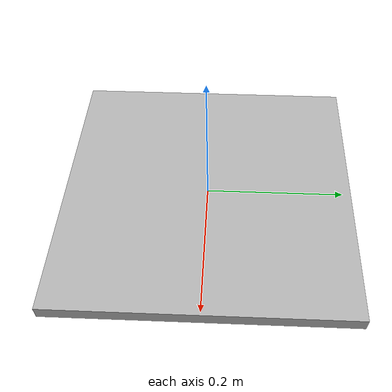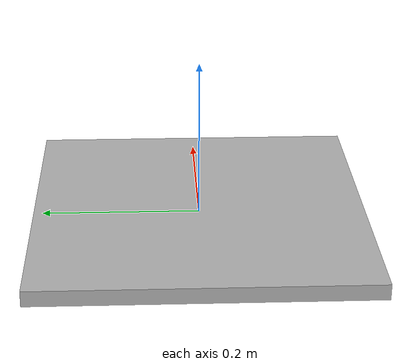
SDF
<?xml version="1.0" ?>
<sdf version="1.4">
  <model name="go_board">
    <static>0</static>
    <link name="link">

      <inertial>
        <mass>0.05</mass>
        <inertia>
          <ixx>0.0015</ixx>
          <ixy>0.1</ixy>
          <ixz>0.1</ixz>
          <iyy>0.0015</iyy>
          <iyz>0.1</iyz>
          <izz>0.00108</izz>
        </inertia>
      </inertial>

      <collision name="colision">
        <pose>0 0 0 0 0 0</pose>
          <geometry>
            <box>
              <size>0.42 0.42 0.02</size>
            </box>
          </geometry>
        <surface>
          <friction>
            <ode>
              <mu>30000000.0</mu>
              <mu2>3000000.0</mu2>
              <fdir1>0 0 0</fdir1>
            </ode>
          </friction>
          <contact>
            <ode>
              <kp>1000000000.0</kp>
              <kd>1000000.0</kd>
              <min_depth>0.0025</min_depth>
              <max_vel>0.1</max_vel>
            </ode>
          </contact>
        </surface>
      </collision>

      <visual name="visual1">
        <pose>0 0 0 0 0 0</pose>
        <geometry>
          <mesh>
             <uri>model://go_board/meshes/go_board.dae</uri>
    		<!-- the dae is a cube of 5x5x5 cm and the chessboard is 46x46x4-->
	    <scale> 8.4 8.4 0.4 </scale>
          </mesh>
        </geometry>
      </visual>

      <velocity_decay>
        <linear>0.1</linear>
        <angular>0.1</angular>
      </velocity_decay>
      <self_collide>0</self_collide>
      <kinematic>0</kinematic>
      <gravity>1</gravity>
    </link>
  </model>
</sdf>
